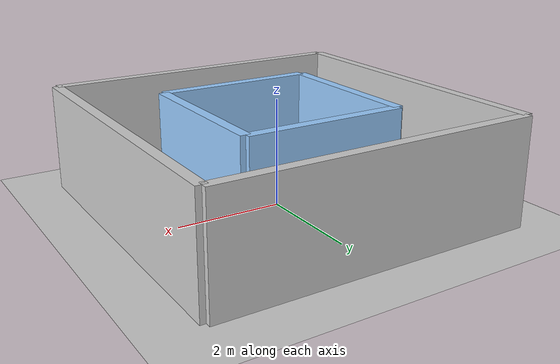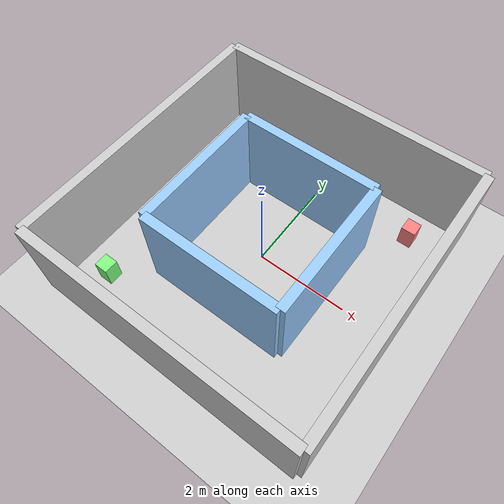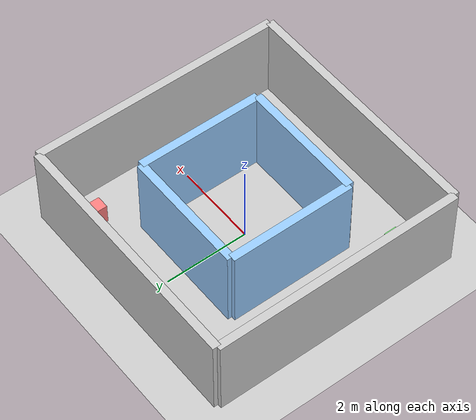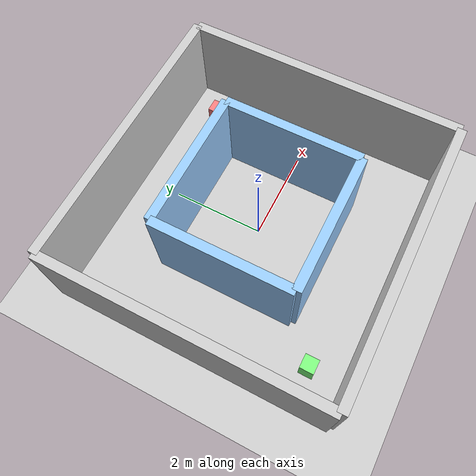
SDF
<?xml version="1.0" ?>
<sdf version="1.6">
  <world name="campus_corridor">

    <!-- 基础设置 -->
    <include>
      <uri>model://ground_plane</uri>
    </include>

    <include>
      <uri>model://sun</uri>
    </include>

    <!-- 创建"回"字型走廊 -->
    <!-- 外墙 -->
    <!-- 上墙 -->
    <model name="outer_wall_top">
      <pose>0 3 1 0 0 0</pose>
      <static>true</static>
      <link name="link">
        <visual name="visual">
          <geometry>
            <box>
              <size>6 0.2 2</size>
            </box>
          </geometry>
          <material>
            <ambient>0.8 0.8 0.8 1</ambient>
          </material>
        </visual>
        <collision name="collision">
          <geometry>
            <box>
              <size>6 0.2 2</size>
            </box>
          </geometry>
        </collision>
      </link>
    </model>

    <!-- 下墙 -->
    <model name="outer_wall_bottom">
      <pose>0 -3 1 0 0 0</pose>
      <static>true</static>
      <link name="link">
        <visual name="visual">
          <geometry>
            <box>
              <size>6 0.2 2</size>
            </box>
          </geometry>
          <material>
            <ambient>0.8 0.8 0.8 1</ambient>
          </material>
        </visual>
        <collision name="collision">
          <geometry>
            <box>
              <size>6 0.2 2</size>
            </box>
          </geometry>
        </collision>
      </link>
    </model>

    <!-- 左墙 -->
    <model name="outer_wall_left">
      <pose>-3 0 1 0 0 0</pose>
      <static>true</static>
      <link name="link">
        <visual name="visual">
          <geometry>
            <box>
              <size>0.2 6 2</size>
            </box>
          </geometry>
          <material>
            <ambient>0.8 0.8 0.8 1</ambient>
          </material>
        </visual>
        <collision name="collision">
          <geometry>
            <box>
              <size>0.2 6 2</size>
            </box>
          </geometry>
        </collision>
      </link>
    </model>

    <!-- 右墙 -->
    <model name="outer_wall_right">
      <pose>3 0 1 0 0 0</pose>
      <static>true</static>
      <link name="link">
        <visual name="visual">
          <geometry>
            <box>
              <size>0.2 6 2</size>
            </box>
          </geometry>
          <material>
            <ambient>0.8 0.8 0.8 1</ambient>
          </material>
        </visual>
        <collision name="collision">
          <geometry>
            <box>
              <size>0.2 6 2</size>
            </box>
          </geometry>
        </collision>
      </link>
    </model>

    <!-- 内部"回"字中心障碍物 -->
    <!-- 上内墙 -->
    <model name="inner_wall_top">
      <pose>0 1.5 1 0 0 0</pose>
      <static>true</static>
      <link name="link">
        <visual name="visual">
          <geometry>
            <box>
              <size>3 0.2 2</size>
            </box>
          </geometry>
          <material>
            <ambient>0.6 0.8 1 1</ambient>
          </material>
        </visual>
        <collision name="collision">
          <geometry>
            <box>
              <size>3 0.2 2</size>
            </box>
          </geometry>
        </collision>
      </link>
    </model>

    <!-- 下内墙 -->
    <model name="inner_wall_bottom">
      <pose>0 -1.5 1 0 0 0</pose>
      <static>true</static>
      <link name="link">
        <visual name="visual">
          <geometry>
            <box>
              <size>3 0.2 2</size>
            </box>
          </geometry>
          <material>
            <ambient>0.6 0.8 1 1</ambient>
          </material>
        </visual>
        <collision name="collision">
          <geometry>
            <box>
              <size>3 0.2 2</size>
            </box>
          </geometry>
        </collision>
      </link>
    </model>

    <!-- 左内墙 -->
    <model name="inner_wall_left">
      <pose>-1.5 0 1 0 0 0</pose>
      <static>true</static>
      <link name="link">
        <visual name="visual">
          <geometry>
            <box>
              <size>0.2 3 2</size>
            </box>
          </geometry>
          <material>
            <ambient>0.6 0.8 1 1</ambient>
          </material>
        </visual>
        <collision name="collision">
          <geometry>
            <box>
              <size>0.2 3 2</size>
            </box>
          </geometry>
        </collision>
      </link>
    </model>

    <!-- 右内墙 -->
    <model name="inner_wall_right">
      <pose>1.5 0 1 0 0 0</pose>
      <static>true</static>
      <link name="link">
        <visual name="visual">
          <geometry>
            <box>
              <size>0.2 3 2</size>
            </box>
          </geometry>
          <material>
            <ambient>0.6 0.8 1 1</ambient>
          </material>
        </visual>
        <collision name="collision">
          <geometry>
            <box>
              <size>0.2 3 2</size>
            </box>
          </geometry>
        </collision>
      </link>
    </model>

    <!-- 添加一些小装饰物（可选） -->
    <model name="decoration_1">
      <pose>2.2 2.2 0.25 0 0 0</pose>
      <static>true</static>
      <link name="link">
        <visual name="visual">
          <geometry>
            <box>
              <size>0.3 0.3 0.5</size>
            </box>
          </geometry>
          <material>
            <ambient>1 0.5 0.5 1</ambient>
          </material>
        </visual>
        <collision name="collision">
          <geometry>
            <box>
              <size>0.3 0.3 0.5</size>
            </box>
          </geometry>
        </collision>
      </link>
    </model>

    <model name="decoration_2">
      <pose>-2.2 -2.2 0.25 0 0 0</pose>
      <static>true</static>
      <link name="link">
        <visual name="visual">
          <geometry>
            <box>
              <size>0.3 0.3 0.5</size>
            </box>
          </geometry>
          <material>
            <ambient>0.5 1 0.5 1</ambient>
          </material>
        </visual>
        <collision name="collision">
          <geometry>
            <box>
              <size>0.3 0.3 0.5</size>
            </box>
          </geometry>
        </collision>
      </link>
    </model>

  </world>
</sdf>
